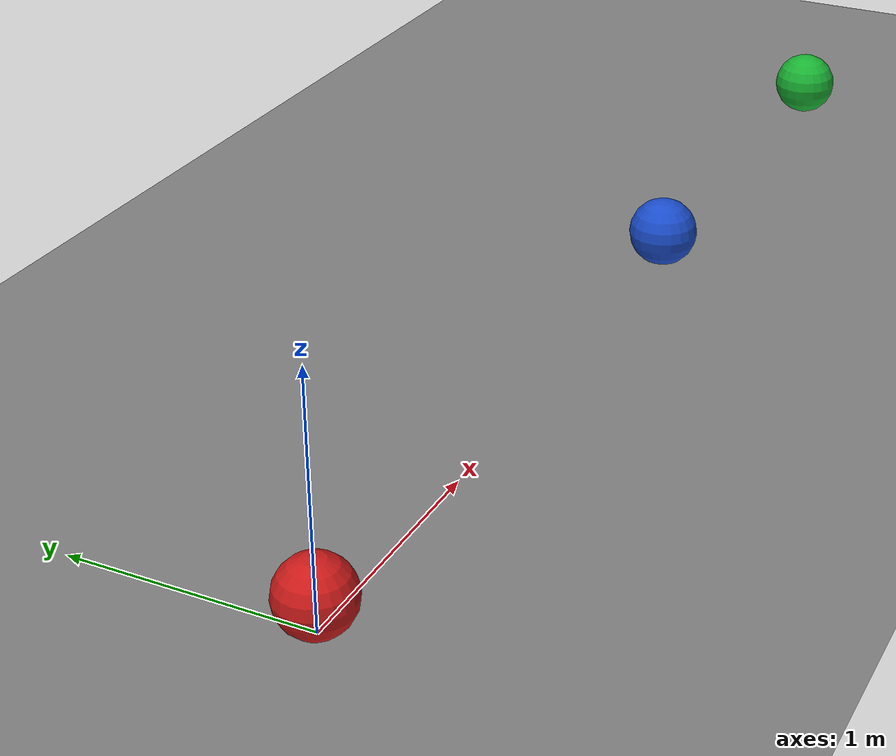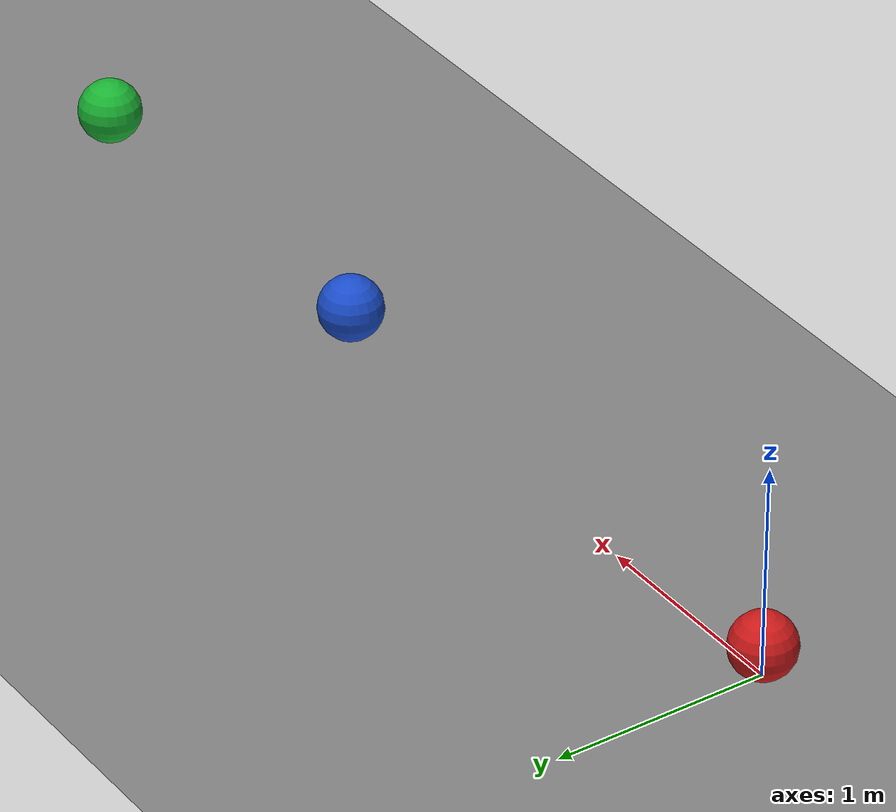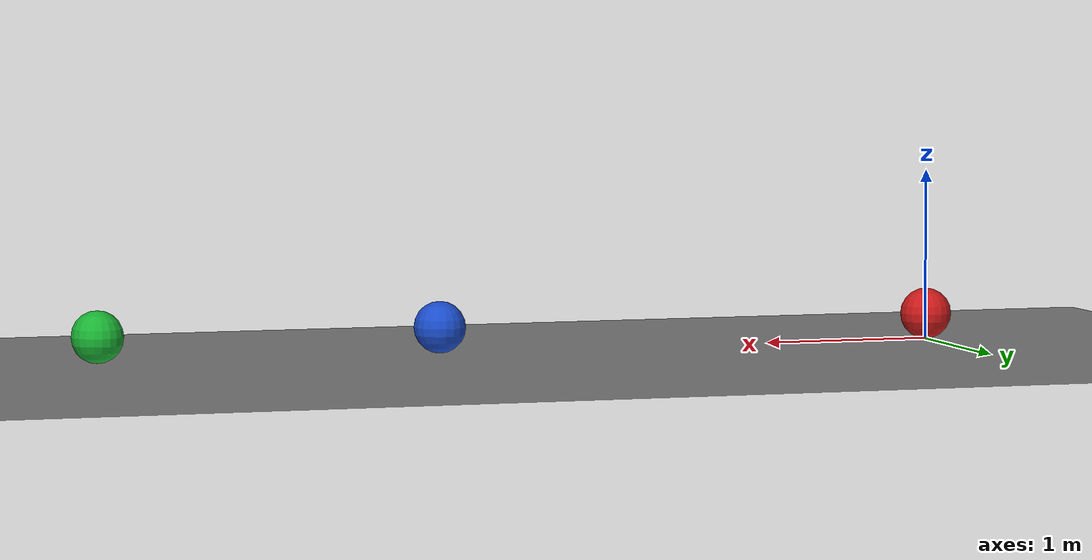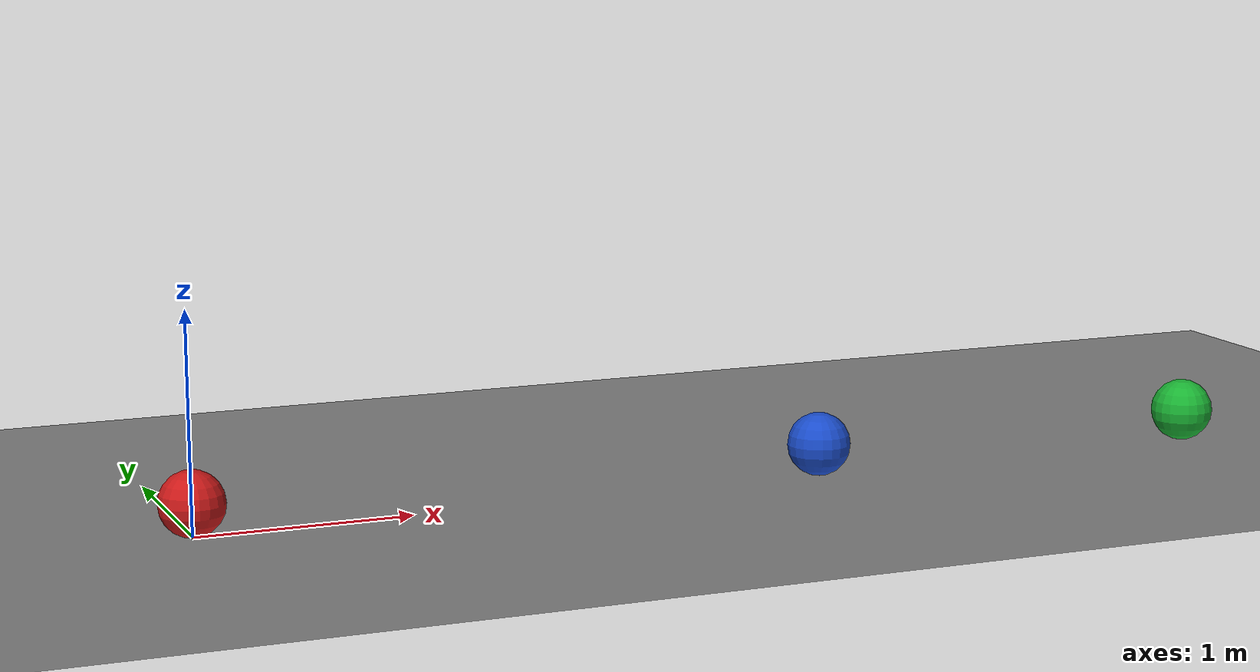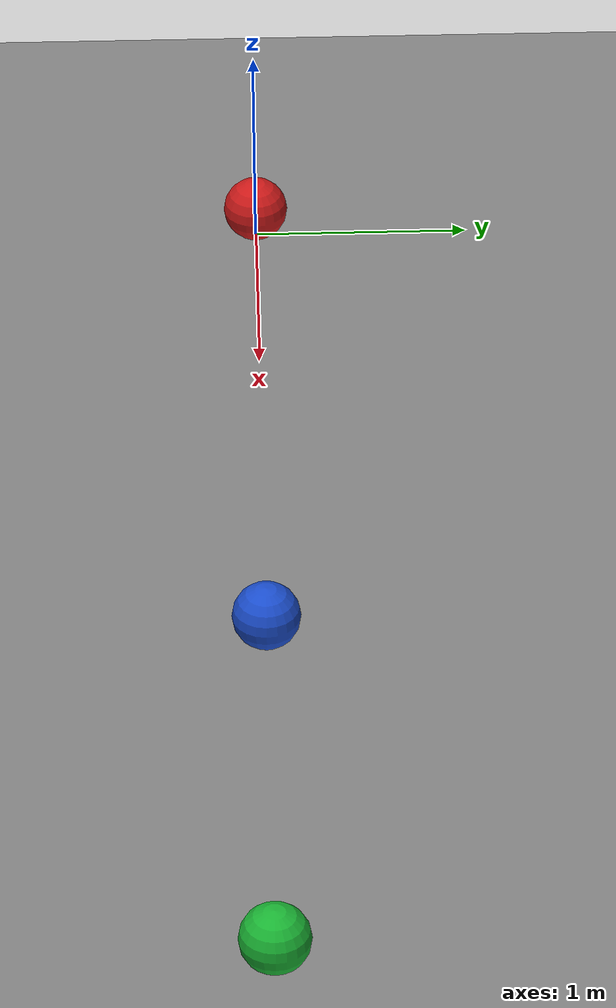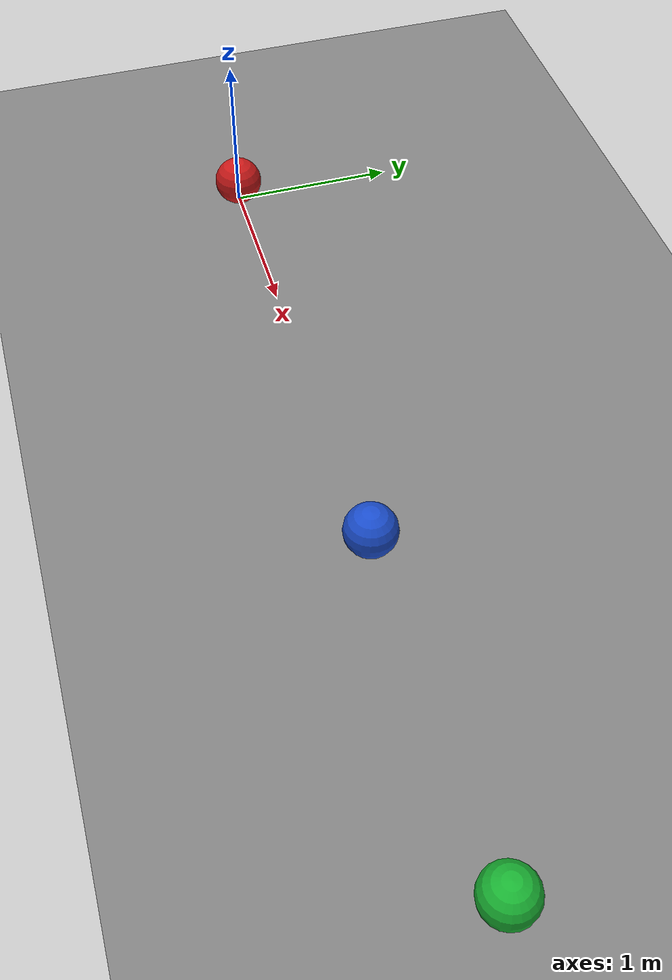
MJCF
<mujoco model="billiards">
  <option timestep="0.002" gravity="0 0 -9.81"/>
  <visual>
    <global offwidth="1280" offheight="720"/>
  </visual>

  <default>
    <geom friction="0.6 0.005 0.03" solref="0.01 1"/>
  </default>

  <worldbody>
    <light diffuse="0.8 0.8 0.8" pos="6 0 4" dir="0 0 -1"/>

    <geom name="floor" type="plane" size="12 3 0.1" pos="6 0 0" rgba="0.5 0.5 0.5 1"/>

    <!-- Cue ball -- body index 0 (obj_id=1, "object0"), launched. -->
    <body name="ball" pos="0 0 0.15">
      <freejoint/>
      <geom name="ball_geom" type="sphere" size="0.15" mass="0.5" rgba="0.8 0.1 0.1 1"
            condim="6"/>
    </body>

    <body name="target_a" pos="3 0 0.15">
      <freejoint/>
      <geom name="target_a_geom" type="sphere" size="0.15" mass="0.5" rgba="0.1 0.3 0.8 1"
            condim="6"/>
    </body>

    <body name="target_b" pos="5.0 0 0.15">
      <freejoint/>
      <geom name="target_b_geom" type="sphere" size="0.15" mass="0.5" rgba="0.1 0.7 0.2 1"
            condim="6"/>
    </body>
  </worldbody>

  <keyframe>
    <key name="break" qpos="0 0 0.15 1 0 0 0   3 0 0.15 1 0 0 0   5.0 0 0.15 1 0 0 0"
                      qvel="12 0 0 0 0 0       0 0 0 0 0 0        0 0 0 0 0 0"/>
  </keyframe>
</mujoco>
